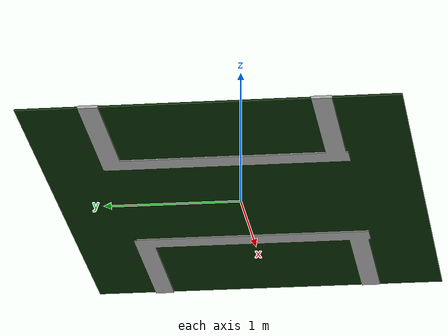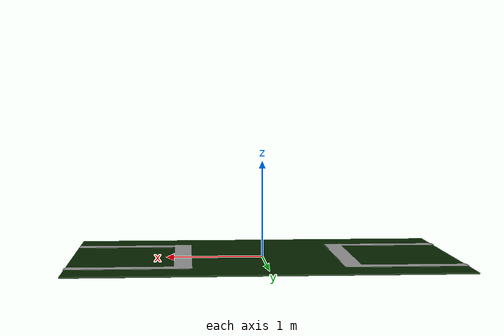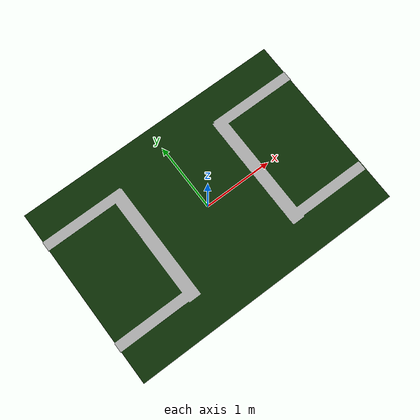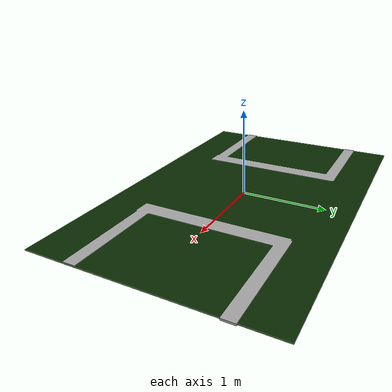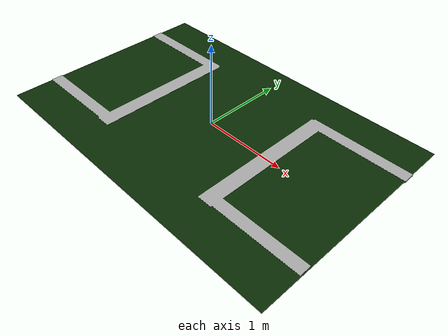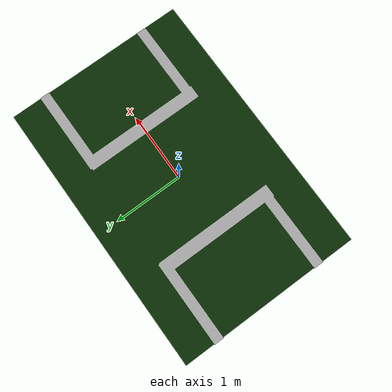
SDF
<?xml version="1.0" ?>
<sdf version="1.5">
  <model name="grass_robocup">
    <link name="link">
      <pose>0 0 0 0 0 0</pose>
      <visual name="visual">
        <geometry>
          <mesh>
            <uri>model://grass_robocup/meshes/model.dae</uri>
          </mesh>
        </geometry>
      </visual>
    </link>
    <static>1</static>
  </model>
</sdf>
